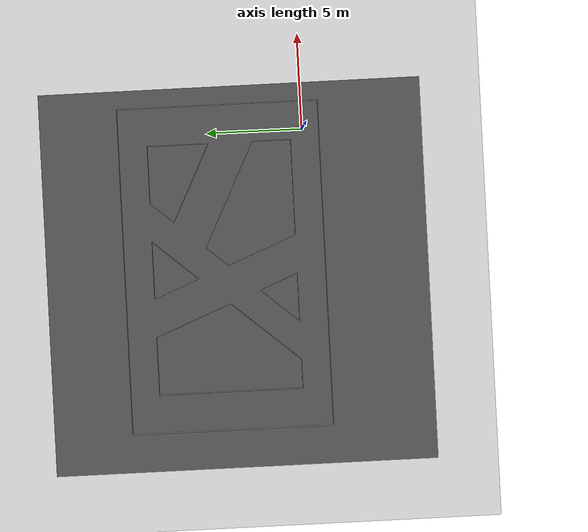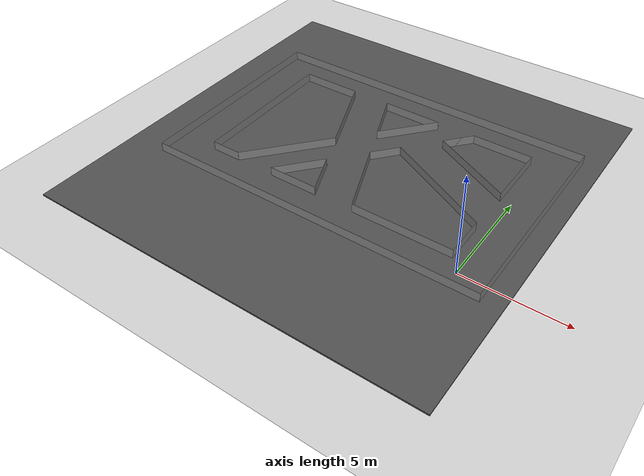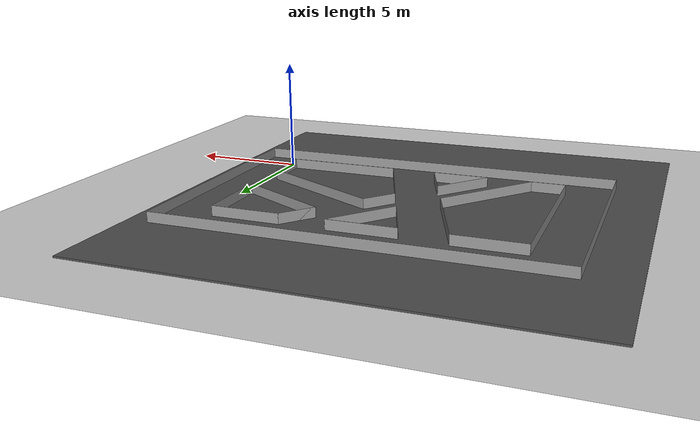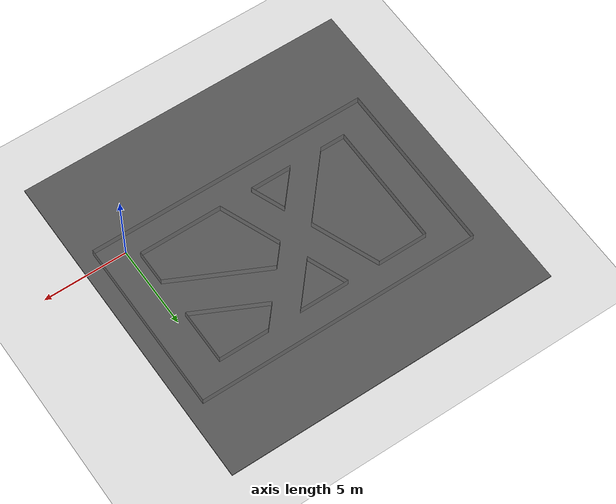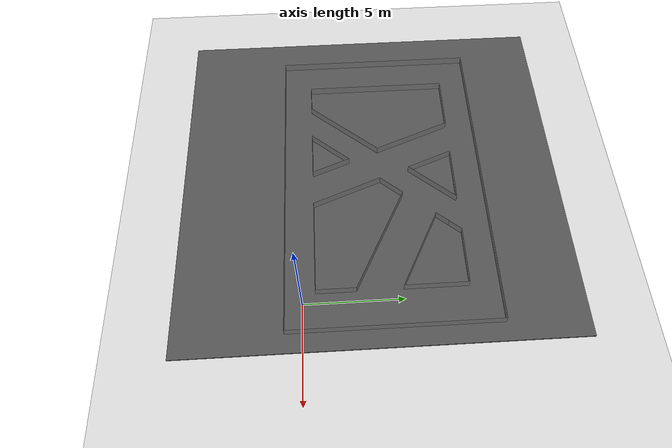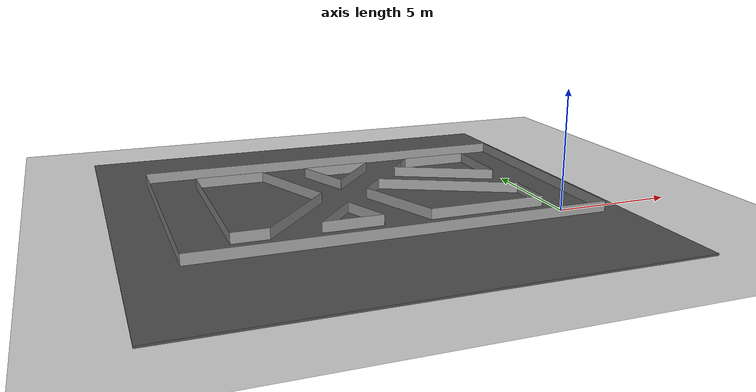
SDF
<sdf version="1.6">
 <world name="default">
  <light name="sun" type="directional">
   <pose>0 0 10 0 -0 0</pose>
   <diffuse>0.8 0.8 0.8 1</diffuse>
   <specular>0.2 0.2 0.2 1</specular>
   <attenuation>
    <range>1000</range>
    <constant>0.9</constant>
    <linear>0.01</linear>
    <quadratic>0.001</quadratic>
   </attenuation>
   <direction>-0.5 0.1 -0.9</direction>
  </light>
  <model name="ground_plane">
   <static>1</static>
   <link name="link">
    <collision name="collision">
     <geometry><plane><normal>0 0 1</normal><size>100 100</size></plane></geometry>
     <surface><friction><ode><mu>100</mu><mu2>50</mu2></ode></friction></surface>
    </collision>
    <visual name="visual">
     <cast_shadows>0</cast_shadows>
     <geometry><plane><normal>0 0 1</normal><size>100 100</size></plane></geometry>
     <material>
      <script><uri>file://media/materials/scripts/gazebo.material</uri><name>Gazebo/Grey</name></script>
     </material>
    </visual>
   </link>
  </model>
  <gravity>0 0 -9.8</gravity>
  <magnetic_field>6e-06 2.3e-05 -4.2e-05</magnetic_field>
  <atmosphere type="adiabatic"/>
  <physics name="default_physics" default="0" type="ode">
   <max_step_size>0.001</max_step_size>
   <real_time_factor>1</real_time_factor>
   <real_time_update_rate>1000</real_time_update_rate>
  </physics>
  <scene><ambient>0.4 0.4 0.4 1</ambient><background>0.7 0.7 0.7 1</background><shadows>1</shadows></scene>
  <spherical_coordinates>
   <surface_model>EARTH_WGS84</surface_model>
   <latitude_deg>0</latitude_deg>
   <longitude_deg>0</longitude_deg>
   <elevation>0</elevation>
   <heading_deg>0</heading_deg>
  </spherical_coordinates>
  <model name="final_race_world">
   <pose>-7.01323 4.39026 0 0 -0 0</pose>
   <link name="Wall_0">
    <collision name="Wall_0_Collision">
     <geometry><box><size>17.01 0.01 0.5</size></box></geometry>
     <pose>0 0 0.25 0 -0 0</pose>
    </collision>
    <visual name="Wall_0_Visual">
     <pose>0 0 0.25 0 -0 0</pose>
     <geometry><box><size>17.01 0.01 0.5</size></box></geometry>
     <material>
      <script><uri>file://media/materials/scripts/gazebo.material</uri><name>Gazebo/Grey</name></script>
      <ambient>1 1 1 1</ambient>
     </material>
     <meta><layer>0</layer></meta>
    </visual>
    <pose>0 5.25 0 0 -0 0</pose>
   </link>
   <link name="Wall_10">
    <collision name="Wall_10_Collision">
     <geometry><box><size>3.01 0.01 0.5</size></box></geometry>
     <pose>0 0 0.25 0 -0 0</pose>
    </collision>
    <visual name="Wall_10_Visual">
     <pose>0 0 0.25 0 -0 0</pose>
     <geometry><box><size>3.01 0.01 0.5</size></box></geometry>
     <material>
      <script><uri>file://media/materials/scripts/gazebo.material</uri><name>Gazebo/Grey</name></script>
      <ambient>1 1 1 1</ambient>
     </material>
     <meta><layer>0</layer></meta>
    </visual>
    <pose>-5 3.75 0 0 -0 0</pose>
   </link>
   <link name="Wall_11">
    <collision name="Wall_11_Collision">
     <geometry><box><size>4.26428 0.01 0.5</size></box></geometry>
     <pose>0 0 0.25 0 -0 0</pose>
    </collision>
    <visual name="Wall_11_Visual">
     <pose>0 0 0.25 0 -0 0</pose>
     <geometry><box><size>4.26428 0.01 0.5</size></box></geometry>
     <material>
      <script><uri>file://media/materials/scripts/gazebo.material</uri><name>Gazebo/Grey</name></script>
      <ambient>1 1 1 1</ambient>
     </material>
     <meta><layer>0</layer></meta>
    </visual>
    <pose>-2.71 1.775 0 0 0 -1.19029</pose>
   </link>
   <link name="Wall_14">
    <collision name="Wall_14_Collision">
     <geometry><box><size>7.51 0.01 0.5</size></box></geometry>
     <pose>0 0 0.25 0 -0 0</pose>
    </collision>
    <visual name="Wall_14_Visual">
     <pose>0 0 0.25 0 -0 0</pose>
     <geometry><box><size>7.51 0.01 0.5</size></box></geometry>
     <material>
      <script><uri>file://media/materials/scripts/gazebo.material</uri><name>Gazebo/Grey</name></script>
      <ambient>1 1 1 1</ambient>
     </material>
     <meta><layer>0</layer></meta>
    </visual>
    <pose>-6.5 0 0 0 0 -1.5708</pose>
   </link>
   <link name="Wall_17">
    <collision name="Wall_17_Collision">
     <geometry><box><size>4.70988 0.01 0.5</size></box></geometry>
     <pose>0 0 0.25 0 -0 0</pose>
    </collision>
    <visual name="Wall_17_Visual">
     <pose>0 0 0.25 0 -0 0</pose>
     <geometry><box><size>4.70988 0.01 0.5</size></box></geometry>
     <material>
      <script><uri>file://media/materials/scripts/gazebo.material</uri><name>Gazebo/Grey</name></script>
      <ambient>1 1 1 1</ambient>
     </material>
     <meta><layer>0</layer></meta>
    </visual>
    <pose>-3.46 -1.975 0 0 0 -2.28542</pose>
   </link>
   <link name="Wall_2">
    <collision name="Wall_2_Collision">
     <geometry><box><size>17.01 0.01 0.5</size></box></geometry>
     <pose>0 0 0.25 0 -0 0</pose>
    </collision>
    <visual name="Wall_2_Visual">
     <pose>0 0 0.25 0 -0 0</pose>
     <geometry><box><size>17.01 0.01 0.5</size></box></geometry>
     <material>
      <script><uri>file://media/materials/scripts/gazebo.material</uri><name>Gazebo/Grey</name></script>
      <ambient>1 1 1 1</ambient>
     </material>
     <meta><layer>0</layer></meta>
    </visual>
    <pose>0 -5.25 0 0 -0 0</pose>
   </link>
   <link name="Wall_25">
    <collision name="Wall_25_Collision">
     <geometry><box><size>1.51 0.01 0.5</size></box></geometry>
     <pose>0 0 0.25 0 -0 0</pose>
    </collision>
    <visual name="Wall_25_Visual">
     <pose>0 0 0.25 0 -0 0</pose>
     <geometry><box><size>1.51 0.01 0.5</size></box></geometry>
     <material>
      <script><uri>file://media/materials/scripts/gazebo.material</uri><name>Gazebo/Grey</name></script>
      <ambient>1 1 1 1</ambient>
     </material>
     <meta><layer>0</layer></meta>
    </visual>
    <pose>-5.75 -3.75 0 0 -0 3.14159</pose>
   </link>
   <link name="Wall_27">
    <collision name="Wall_27_Collision">
     <geometry><box><size>3.01 0.01 0.5</size></box></geometry>
     <pose>0 0 0.25 0 -0 0</pose>
    </collision>
    <visual name="Wall_27_Visual">
     <pose>0 0 0.25 0 -0 0</pose>
     <geometry><box><size>3.01 0.01 0.5</size></box></geometry>
     <material>
      <script><uri>file://media/materials/scripts/gazebo.material</uri><name>Gazebo/Grey</name></script>
      <ambient>1 1 1 1</ambient>
     </material>
     <meta><layer>0</layer></meta>
    </visual>
    <pose>0 3.75 0 0 -0 0</pose>
   </link>
   <link name="Wall_33">
    <collision name="Wall_33_Collision">
     <geometry><box><size>3.14404 0.01 0.5</size></box></geometry>
     <pose>0 0 0.25 0 -0 0</pose>
    </collision>
    <visual name="Wall_33_Visual">
     <pose>0 0 0.25 0 -0 0</pose>
     <geometry><box><size>3.14404 0.01 0.5</size></box></geometry>
     <material>
      <script><uri>file://media/materials/scripts/gazebo.material</uri><name>Gazebo/Grey</name></script>
      <ambient>1 1 1 1</ambient>
     </material>
     <meta><layer>0</layer></meta>
    </visual>
    <pose>0.4735 2.566 0 0 0 -2.28506</pose>
   </link>
   <link name="Wall_35">
    <collision name="Wall_35_Collision">
     <geometry><box><size>2.56034 0.01 0.5</size></box></geometry>
     <pose>0 0 0.25 0 -0 0</pose>
    </collision>
    <visual name="Wall_35_Visual">
     <pose>0 0 0.25 0 -0 0</pose>
     <geometry><box><size>2.56034 0.01 0.5</size></box></geometry>
     <material>
      <script><uri>file://media/materials/scripts/gazebo.material</uri><name>Gazebo/Grey</name></script>
      <ambient>1 1 1 1</ambient>
     </material>
     <meta><layer>0</layer></meta>
    </visual>
    <pose>-1.0265 2.566 0 0 -0 1.95123</pose>
   </link>
   <link name="Wall_37">
    <collision name="Wall_37_Collision">
     <geometry><box><size>2.51 0.01 0.5</size></box></geometry>
     <pose>0 0 0.25 0 -0 0</pose>
    </collision>
    <visual name="Wall_37_Visual">
     <pose>0 0 0.25 0 -0 0</pose>
     <geometry><box><size>2.51 0.01 0.5</size></box></geometry>
     <material>
      <script><uri>file://media/materials/scripts/gazebo.material</uri><name>Gazebo/Grey</name></script>
      <ambient>1 1 1 1</ambient>
     </material>
     <meta><layer>0</layer></meta>
    </visual>
    <pose>-1.75 -3.75 0 0 -0 0</pose>
   </link>
   <link name="Wall_39">
    <collision name="Wall_39_Collision">
     <geometry><box><size>2.62232 0.01 0.5</size></box></geometry>
     <pose>0 0 0.25 0 -0 0</pose>
    </collision>
    <visual name="Wall_39_Visual">
     <pose>0 0 0.25 0 -0 0</pose>
     <geometry><box><size>2.62232 0.01 0.5</size></box></geometry>
     <material>
      <script><uri>file://media/materials/scripts/gazebo.material</uri><name>Gazebo/Grey</name></script>
      <ambient>1 1 1 1</ambient>
     </material>
     <meta><layer>0</layer></meta>
    </visual>
    <pose>-2.1445 -2.763 0 0 -0 0.856648</pose>
   </link>
   <link name="Wall_41">
    <collision name="Wall_41_Collision">
     <geometry><box><size>2.13584 0.01 0.5</size></box></geometry>
     <pose>0 0 0.25 0 -0 0</pose>
    </collision>
    <visual name="Wall_41_Visual">
     <pose>0 0 0.25 0 -0 0</pose>
     <geometry><box><size>2.13584 0.01 0.5</size></box></geometry>
     <material>
      <script><uri>file://media/materials/scripts/gazebo.material</uri><name>Gazebo/Grey</name></script>
      <ambient>1 1 1 1</ambient>
     </material>
     <meta><layer>0</layer></meta>
    </visual>
    <pose>-0.8945 -2.763 0 0 0 -1.19055</pose>
   </link>
   <link name="Wall_43">
    <collision name="Wall_43_Collision">
     <geometry><box><size>5.01 0.01 0.5</size></box></geometry>
     <pose>0 0 0.25 0 -0 0</pose>
    </collision>
    <visual name="Wall_43_Visual">
     <pose>0 0 0.25 0 -0 0</pose>
     <geometry><box><size>5.01 0.01 0.5</size></box></geometry>
     <material>
      <script><uri>file://media/materials/scripts/gazebo.material</uri><name>Gazebo/Grey</name></script>
      <ambient>1 1 1 1</ambient>
     </material>
     <meta><layer>0</layer></meta>
    </visual>
    <pose>4 -3.75 0 0 -0 0</pose>
   </link>
   <link name="Wall_45">
    <collision name="Wall_45_Collision">
     <geometry><box><size>2.01 0.01 0.5</size></box></geometry>
     <pose>0 0 0.25 0 -0 0</pose>
    </collision>
    <visual name="Wall_45_Visual">
     <pose>0 0 0.25 0 -0 0</pose>
     <geometry><box><size>2.01 0.01 0.5</size></box></geometry>
     <material>
      <script><uri>file://media/materials/scripts/gazebo.material</uri><name>Gazebo/Grey</name></script>
      <ambient>1 1 1 1</ambient>
     </material>
     <meta><layer>0</layer></meta>
    </visual>
    <pose>6.5 -2.75 0 0 -0 1.5708</pose>
   </link>
   <link name="Wall_47">
    <collision name="Wall_47_Collision">
     <geometry><box><size>3.83662 0.01 0.5</size></box></geometry>
     <pose>0 0 0.25 0 -0 0</pose>
    </collision>
    <visual name="Wall_47_Visual">
     <pose>0 0 0.25 0 -0 0</pose>
     <geometry><box><size>3.83662 0.01 0.5</size></box></geometry>
     <material>
      <script><uri>file://media/materials/scripts/gazebo.material</uri><name>Gazebo/Grey</name></script>
      <ambient>1 1 1 1</ambient>
     </material>
     <meta><layer>0</layer></meta>
    </visual>
    <pose>0.7895 -1.9735 0 0 -0 1.95125</pose>
   </link>
   <link name="Wall_49">
    <collision name="Wall_49_Collision">
     <geometry><box><size>6.07608 0.01 0.5</size></box></geometry>
     <pose>0 0 0.25 0 -0 0</pose>
    </collision>
    <visual name="Wall_49_Visual">
     <pose>0 0 0.25 0 -0 0</pose>
     <geometry><box><size>6.07608 0.01 0.5</size></box></geometry>
     <material>
      <script><uri>file://media/materials/scripts/gazebo.material</uri><name>Gazebo/Grey</name></script>
      <ambient>1 1 1 1</ambient>
     </material>
     <meta><layer>0</layer></meta>
    </visual>
    <pose>3.7805 -0.407 0 0 -0 2.68289</pose>
   </link>
   <link name="Wall_53">
    <collision name="Wall_53_Collision">
     <geometry><box><size>1.50934 0.01 0.5</size></box></geometry>
     <pose>0 0 0.25 0 -0 0</pose>
    </collision>
    <visual name="Wall_53_Visual">
     <pose>0 0 0.25 0 -0 0</pose>
     <geometry><box><size>1.50934 0.01 0.5</size></box></geometry>
     <material>
      <script><uri>file://media/materials/scripts/gazebo.material</uri><name>Gazebo/Grey</name></script>
      <ambient>1 1 1 1</ambient>
     </material>
     <meta><layer>0</layer></meta>
    </visual>
    <pose>0.57 0.3695 0 0 -0 0.856672</pose>
   </link>
   <link name="Wall_55">
    <collision name="Wall_55_Collision">
     <geometry><box><size>3.01 0.01 0.5</size></box></geometry>
     <pose>0 0 0.25 0 -0 0</pose>
    </collision>
    <visual name="Wall_55_Visual">
     <pose>0 0 0.25 0 -0 0</pose>
     <geometry><box><size>3.01 0.01 0.5</size></box></geometry>
     <material>
      <script><uri>file://media/materials/scripts/gazebo.material</uri><name>Gazebo/Grey</name></script>
      <ambient>1 1 1 1</ambient>
     </material>
     <meta><layer>0</layer></meta>
    </visual>
    <pose>5 3.75 0 0 -0 0</pose>
   </link>
   <link name="Wall_57">
    <collision name="Wall_57_Collision">
     <geometry><box><size>3.21 0.01 0.5</size></box></geometry>
     <pose>0 0 0.25 0 -0 0</pose>
    </collision>
    <visual name="Wall_57_Visual">
     <pose>0 0 0.25 0 -0 0</pose>
     <geometry><box><size>3.21 0.01 0.5</size></box></geometry>
     <material>
      <script><uri>file://media/materials/scripts/gazebo.material</uri><name>Gazebo/Grey</name></script>
      <ambient>1 1 1 1</ambient>
     </material>
     <meta><layer>0</layer></meta>
    </visual>
    <pose>6.5 2.15 0 0 0 -1.5708</pose>
   </link>
   <link name="Wall_59">
    <collision name="Wall_59_Collision">
     <geometry><box><size>1.60219 0.01 0.5</size></box></geometry>
     <pose>0 0 0.25 0 -0 0</pose>
    </collision>
    <visual name="Wall_59_Visual">
     <pose>0 0 0.25 0 -0 0</pose>
     <geometry><box><size>1.60219 0.01 0.5</size></box></geometry>
     <material>
      <script><uri>file://media/materials/scripts/gazebo.material</uri><name>Gazebo/Grey</name></script>
      <ambient>1 1 1 1</ambient>
     </material>
     <meta><layer>0</layer></meta>
    </visual>
    <pose>2.9785 3.1485 0 0 0 -2.28508</pose>
   </link>
   <link name="Wall_6">
    <collision name="Wall_6_Collision">
     <geometry><box><size>10.51 0.01 0.5</size></box></geometry>
     <pose>0 0 0.25 0 -0 0</pose>
    </collision>
    <visual name="Wall_6_Visual">
     <pose>0 0 0.25 0 -0 0</pose>
     <geometry><box><size>10.51 0.01 0.5</size></box></geometry>
     <material>
      <script><uri>file://media/materials/scripts/gazebo.material</uri><name>Gazebo/Grey</name></script>
      <ambient>1 1 1 1</ambient>
     </material>
     <meta><layer>0</layer></meta>
    </visual>
    <pose>-8.5 0 0 0 -0 1.5708</pose>
   </link>
   <link name="Wall_60">
    <collision name="Wall_60_Collision">
     <geometry><box><size>1.60219 0.01 0.5</size></box></geometry>
     <pose>0 0 0.25 0 -0 0</pose>
    </collision>
    <visual name="Wall_60_Visual">
     <pose>0 0 0.25 0 -0 0</pose>
     <geometry><box><size>1.60219 0.01 0.5</size></box></geometry>
     <material>
      <script><uri>file://media/materials/scripts/gazebo.material</uri><name>Gazebo/Grey</name></script>
      <ambient>1 1 1 1</ambient>
     </material>
     <meta><layer>0</layer></meta>
    </visual>
    <pose>2.9785 3.1485 0 0 -0 0.856516</pose>
   </link>
   <link name="Wall_62">
    <collision name="Wall_62_Collision">
     <geometry><box><size>4.51931 0.01 0.5</size></box></geometry>
     <pose>0 0 0.25 0 -0 0</pose>
    </collision>
    <visual name="Wall_62_Visual">
     <pose>0 0 0.25 0 -0 0</pose>
     <geometry><box><size>4.51931 0.01 0.5</size></box></geometry>
     <material>
      <script><uri>file://media/materials/scripts/gazebo.material</uri><name>Gazebo/Grey</name></script>
      <ambient>1 1 1 1</ambient>
     </material>
     <meta><layer>0</layer></meta>
    </visual>
    <pose>4.4785 1.5485 0 0 0 -0.458788</pose>
   </link>
   <link name="Wall_8">
    <collision name="Wall_8_Collision">
     <geometry><box><size>10.51 0.01 0.5</size></box></geometry>
     <pose>0 0 0.25 0 -0 0</pose>
    </collision>
    <visual name="Wall_8_Visual">
     <pose>0 0 0.25 0 -0 0</pose>
     <geometry><box><size>10.51 0.01 0.5</size></box></geometry>
     <material>
      <script><uri>file://media/materials/scripts/gazebo.material</uri><name>Gazebo/Grey</name></script>
      <ambient>1 1 1 1</ambient>
     </material>
     <meta><layer>0</layer></meta>
    </visual>
    <pose>8.5 0 0 0 0 -1.5708</pose>
   </link>
   <static>1</static>
  </model>
  <model name="asphalt_plane">
   <static>1</static>
   <link name="link">
    <collision name="collision"><geometry><box><size>20 20 0.1</size></box></geometry></collision>
    <visual name="visual">
     <cast_shadows>0</cast_shadows>
     <geometry><box><size>20 20 0.1</size></box></geometry>
     <material>
      <script>
       <uri>model://asphalt_plane/materials/scripts</uri>
       <uri>model://asphalt_plane/materials/textures</uri>
       <name>vrc/asphalt</name>
      </script>
     </material>
    </visual>
   </link>
   <pose>-7.54783 3.73703 0 0 -0 0</pose>
  </model>
 </world>
</sdf>
